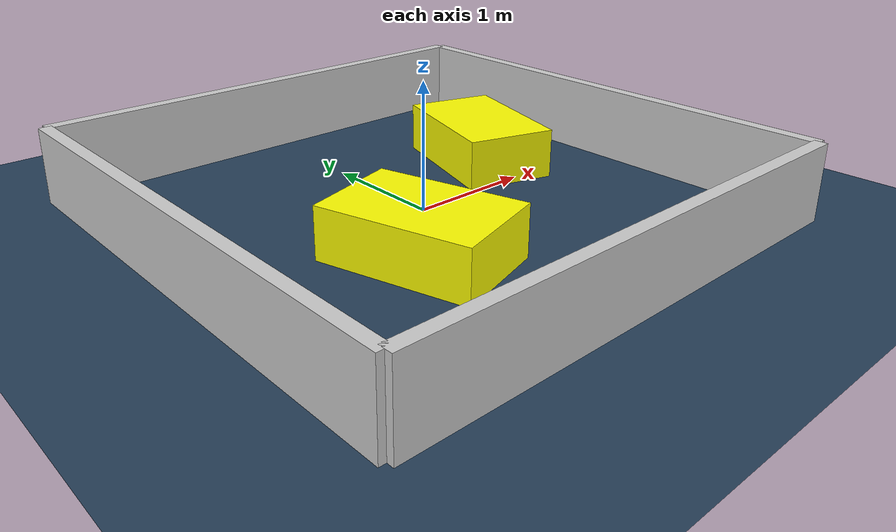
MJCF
<?xml version="1.0" ?>
<mujoco model="generated_environment">
  <option timestep="0.01" integrator="RK4" cone="elliptic"/>
  <default>
    <geom density="1"/>
  </default>
  <asset>
    <texture builtin="gradient" height="3072" rgb1="0.3 0.5 0.7" rgb2="0 0 0" type="skybox" width="512"/>
    <texture builtin="checker" height="300" mark="edge" markrgb="0.8 0.8 0.8" name="groundplane" rgb1="0.2 0.3 0.4" rgb2="0.1 0.2 0.3" type="2d" width="300"/>
    <material name="groundplane" reflectance="0.2" texrepeat="5 5" texture="groundplane" texuniform="true"/>
    <material name="robot" rgba="0.0 1.0 0.0 1"/>
  </asset>
  <worldbody>
    <light dir="0 0 -1" directional="true" pos="0 0 1.5"/>
    <geom condim="4" friction="1.0 0.005 0.001" material="groundplane" name="floor" size="0 0 0.05" type="plane"/>
    <body name="walls">
      <geom name="wall_1" condim="4" pos="-2.0 0.0 0.3" rgba="0.800000011920929 0.800000011920929 0.800000011920929 1.0" size="0.05 2.0 0.3" type="box"/>
      <geom name="wall_2" condim="4" pos="2.0 0.0 0.3" rgba="0.800000011920929 0.800000011920929 0.800000011920929 1.0" size="0.05 2.0 0.3" type="box"/>
      <geom name="wall_3" condim="4" pos="0.0 -2.0 0.3" rgba="0.800000011920929 0.800000011920929 0.800000011920929 1.0" size="2.0 0.05 0.3" type="box"/>
      <geom name="wall_4" condim="4" pos="0.0 2.0 0.3" rgba="0.800000011920929 0.800000011920929 0.800000011920929 1.0" size="2.0 0.05 0.3" type="box"/>
    </body>
    <body name="robot">
      <joint name="joint_x" type="slide" pos="0 0 0" axis="1 0 0"/>
      <joint name="joint_y" type="slide" pos="0 0 0" axis="0 1 0"/>
      <geom name="robot" type="sphere" pos="-0.07497145203915356 0.2969063967295562 0.2" size="0.05" mass="5." friction="1.0 0.005 0.0001" condim="4"/>
      <site name="sensor_ball"/>
    </body>
    <body name="obstacle_1_movable">
      <geom name="obstacle_1_movable" condim="4" pos="-0.5480577300387426 -0.602433206760809 0.2" euler="0 0 16.386702437742887" friction="1.0 0.005 0.001" rgba="1 1 0 1" size="0.39305541569227864 0.5883467152448962 0.2" type="box" mass="0.1"/>
      <joint type="free"/>
    </body>
    <body name="obstacle_2_movable">
      <geom name="obstacle_2_movable" condim="4" pos="1.0478692420543618 0.465193048053578 0.2" euler="0 0 73.41337691561756" friction="1.0 0.005 0.001" rgba="1 1 0 1" size="0.5566280532112473 0.3650728815520769 0.2" type="box" mass="0.1"/>
      <joint type="free"/>
    </body>
  </worldbody>
  <actuator>
    <motor name="actuator_x" joint="joint_x" gear="1" ctrlrange="-1 1"/>
    <motor name="actuator_y" joint="joint_y" gear="1" ctrlrange="-1 1"/>
  </actuator>
</mujoco>
